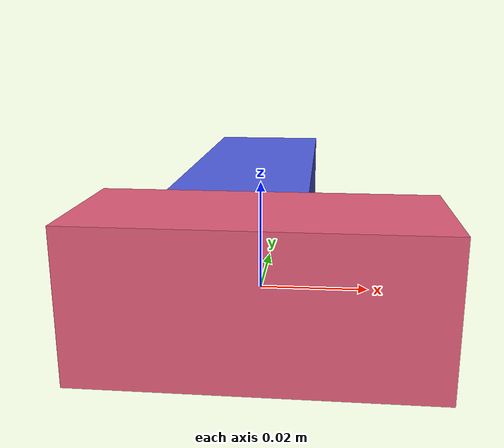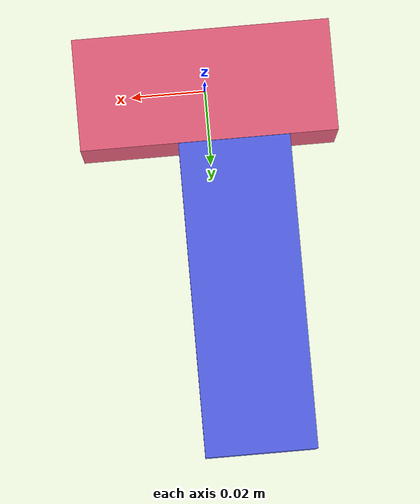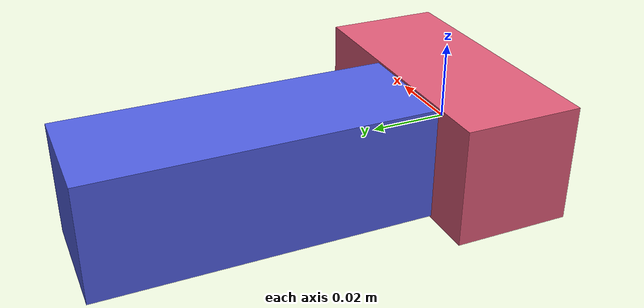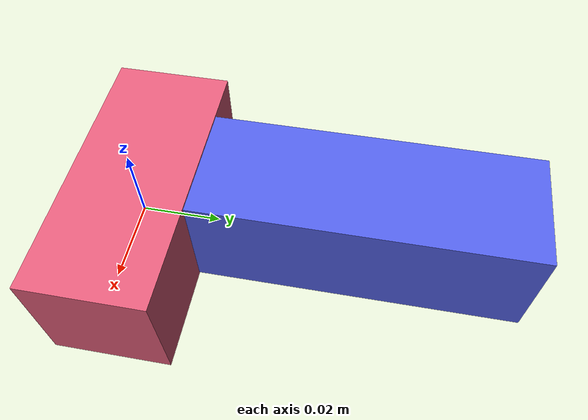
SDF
<sdf version="1.4"><world name="default"><model name="object0"><link name="link1"><pose>0 0 0 0 0 0</pose><inertial><pose>0 0 0 0 0 0</pose><mass>0.037338962608181626</mass><inertia><ixx>5.600844391227243e-06</ixx><ixy>0</ixy><iyy>1.7677511757299945e-05</iyy><ixz>0</ixz><iyz>0</iyz><izz>1.7677511757299945e-05</izz></inertia></inertial><visual name="link1_visual"><pose>0 0  0 0 0 0</pose><geometry><box><size>0.0691462270521882 0.03 0.03</size></box></geometry><material><diffuse>0.8790537059820405 0.35960186523281995 0.4728678994478548 1</diffuse></material></visual><collision><pose>0 0  0 0 0 0</pose><geometry><box><size>0.0691462270521882 0.03 0.03</size></box></geometry></collision></link><link name="link2"><pose>-0.00663810764895508 0.04235828989900443 0 0 0 0</pose><inertial><pose>0 0 0 0 0 0</pose><mass>0.06128254505369312</mass><inertia><ixx>7.00669707072039e-05</ixx><ixy>0</ixy><iyy>8.891075911539975e-06</iyy><ixz>0</ixz><iyz>0</iyz><izz>7.036827655371789e-05</izz></inertia></inertial><visual name="link2_visual"><pose>0 0  0 0 0 0</pose><geometry><box><size>0.03 0.11348619454387616 0.028999999999999998</size></box></geometry><material><diffuse>0.3171875470837579 0.3734845636957716 0.8908416981154967 1</diffuse></material></visual><collision><pose>0 0  0 0 0 0</pose><geometry><box><size>0.03 0.11348619454387616 0.028999999999999998</size></box></geometry></collision></link><joint name="link_joint_0" type="fixed"><parent>link1</parent><child>link2</child><pose>0 0 0 0 0 0</pose><axis><xyz>0 0 1</xyz></axis></joint></model></world></sdf>
